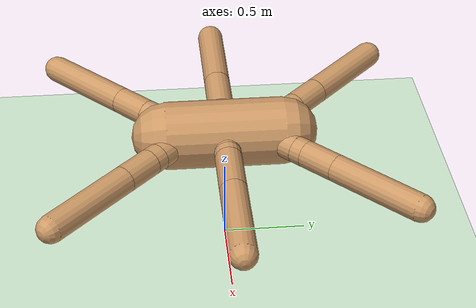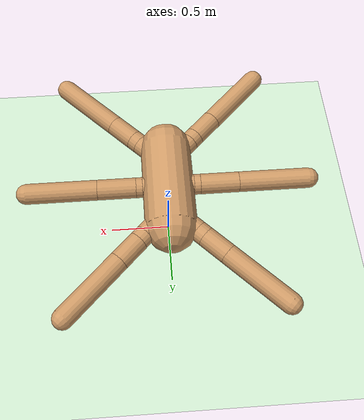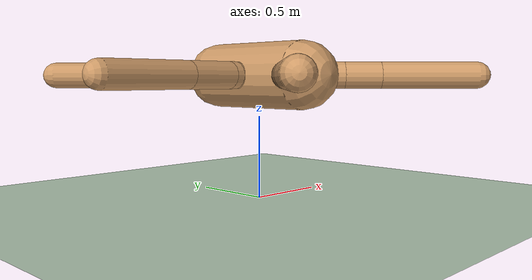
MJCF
<mujoco model="ant">
  <compiler angle="degree" coordinate="local" inertiafromgeom="true"/>
  <option integrator="RK4" timestep="0.01"/>
  <custom>
    <numeric data="0.0 0.0 0.55 1.0 0.0 0.0 0.0 0.0 1.0 0.0 -1.0 0.0 -1.0 0.0 1.0" name="init_qpos"/>
  </custom>
  <default>
    <joint armature="1" damping="1" limited="true"/>
    <geom conaffinity="0" condim="3" density="5.0" friction="1 0.5 0.5" margin="0.01" rgba="0.8 0.6 0.4 1"/>
  </default>
  <asset>
    <texture builtin="gradient" height="100" rgb1="1 1 1" rgb2="0 0 0" type="skybox" width="100"/>
    <texture builtin="flat" height="1278" mark="cross" markrgb="1 1 1" name="texgeom" random="0.01" rgb1="0.8 0.6 0.4" rgb2="0.8 0.6 0.4" type="cube" width="127"/>
    <texture builtin="checker" height="100" name="texplane" rgb1="0 0 0" rgb2="0.8 0.8 0.8" type="2d" width="100"/>
    <material name="MatPlane" reflectance="0.5" shininess="1" specular="1" texrepeat="60 60" texture="texplane"/>
    <material name="geom" texture="texgeom" texuniform="true"/>
  </asset>
  <worldbody>
    <light cutoff="100" diffuse="1 1 1" dir="-0 0 -1.3" directional="true" exponent="1" pos="0 0 1.3" specular=".1 .1 .1"/>
    <geom conaffinity="1" condim="3" material="MatPlane" name="floor" pos="0 0 0" rgba="0.8 0.9 0.8 1" size="40 40 40" type="plane"/>
    <body name="torso" pos="0 0 0.75">
      <camera name="track" mode="trackcom" pos="0 -3 0.3" xyaxes="1 0 0 0 0 1"/>
      <geom name="torso_geom" pos="0 0 0" fromto="0 -0.35 0 0 0.35 0" size="0.2" type="capsule"/>
      <joint armature="0" damping="0" limited="false" margin="0.01" name="root" pos="0 0 0" type="free"/>

      <body name="front_left_leg" pos="0 0.2 0">
        <geom fromto="0.0 0.0 0.0 0.2 0.2 0.0" name="aux_1_geom" size="0.08" type="capsule"/>
        <body name="aux_1" pos="0.2 0.2 0">
          <joint axis="0 0 1" name="hip_1" pos="0.0 0.0 0.0" range="-30 30" type="hinge"/>
          <geom fromto="0.0 0.0 0.0 0.05 0.05 0.0" name="front_left_hip_geom" size="0.08" type="capsule"/>
          <body pos="0.05 0.05 0">
            <joint axis="-1 1 0" name="thigh_1" pos="0.0 0.0 0.0" range="-60 60" type="hinge"/>
            <geom fromto="0.0 0.0 0.0 0.15 0.15 0.0" name="front_left_thigh_geom" size="0.08" type="capsule"/>
            <body pos="0.15 0.15 0.0">
              <joint axis="-1 1 0" name="tibia_1" pos="0.0 0.0 0.0" range="30 70" type="hinge"/>
              <geom fromto="0.0 0.0 0.0 0.4 0.4 0.0" name="front_left_tibia_geom" size="0.08" type="capsule"/>
            </body>
          </body>
        </body>
      </body>

      <body name="front_right_leg" pos="0 0.2 0">
        <geom fromto="0.0 0.0 0.0 -0.2 0.2 0.0" name="aux_2_geom" size="0.08" type="capsule"/>
        <body name="aux_2" pos="-0.2 0.2 0">
          <joint axis="0 0 1" name="hip_2" pos="0.0 0.0 0.0" range="-30 30" type="hinge"/>
          <geom fromto="0.0 0.0 0.0 -0.05 0.05 0.0" name="front_right_hip_geom" size="0.08" type="capsule"/>
          <body pos="-0.05 0.05 0">
            <joint axis="1 1 0" name="thigh_2" pos="0.0 0.0 0.0" range="-60 60" type="hinge"/>
            <geom fromto="0.0 0.0 0.0 -0.15 0.15 0.0" name="front_right_thigh_geom" size="0.08" type="capsule"/>
            <body pos="-0.15 0.15 0.0">
              <joint axis="1 1 0" name="tibia_2" pos="0.0 0.0 0.0" range="-70 -30" type="hinge"/>
              <geom fromto="0.0 0.0 0.0 -0.4 0.4 0.0" name="front_right_tibia_geom" size="0.08" type="capsule"/>
            </body>
          </body>
        </body>
      </body>

      <body name="middle_left_leg" pos="0 0 0">
        <geom fromto="0.0 0.0 0.0 0.2 0.0 0.0" name="aux_3_geom" size="0.08" type="capsule"/>
        <body name="aux_3" pos="0.2 0.0 0">
          <joint axis="0 0 1" name="hip_3" pos="0.0 0.0 0.0" range="-30 30" type="hinge"/>
          <geom fromto="0.0 0.0 0.0 0.05 0.0 0.0" name="middle_left_hip_geom" size="0.08" type="capsule"/>
          <body pos="0.05 0.0 0">
            <joint axis="0 1 0" name="thigh_3" pos="0.0 0.0 0.0" range="-60 60" type="hinge"/>
            <geom fromto="0.0 0.0 0.0 0.3 0.0 0.0" name="middle_left_thigh_geom" size="0.08" type="capsule"/>
            <body pos="0.3 0.0 0.0">
              <joint axis="0 1 0" name="tibia_3" pos="0.0 0.0 0.0" range="30 70" type="hinge"/>
              <geom fromto="0.0 0.0 0.0 0.55 0.0 0.0" name="middle_left_tibia_geom" size="0.08" type="capsule"/>
            </body>
          </body>
        </body>
      </body>

      <body name="middle_right_leg" pos="0 0 0">
        <geom fromto="0.0 0.0 0.0 -0.2 0.0 0.0" name="aux_4_geom" size="0.08" type="capsule"/>
        <body name="aux_4" pos="-0.2 0.0 0">
          <joint axis="0 0 1" name="hip_4" pos="0.0 0.0 0.0" range="-30 30" type="hinge"/>
          <geom fromto="0.0 0.0 0.0 -0.05 0.0 0.0" name="middle_right_hip_geom" size="0.08" type="capsule"/>
          <body pos="-0.05 0.0 0">
            <joint axis="0 1 0" name="thigh_4" pos="0.0 0.0 0.0" range="-60 60" type="hinge"/>
            <geom fromto="0.0 0.0 0.0 -0.3 0.0 0.0" name="middle_right_thigh_geom" size="0.08" type="capsule"/>
            <body pos="-0.3 0.0 0.0">
              <joint axis="0 1 0" name="tibia_4" pos="0.0 0.0 0.0" range="-70 -30" type="hinge"/>
              <geom fromto="0.0 0.0 0.0 -0.55 0.0 0.0" name="middle_right_tibia_geom" size="0.08" type="capsule"/>
            </body>
          </body>
        </body>
      </body>

      <body name="back_left_leg" pos="0 -0.2 0">
        <geom fromto="0.0 0.0 0.0 0.2 -0.2 0.0" name="aux_5_geom" size="0.08" type="capsule"/>
        <body name="aux_5" pos="0.2 -0.2 0">
          <joint axis="0 0 1" name="hip_5" pos="0.0 0.0 0.0" range="-30 30" type="hinge"/>
          <geom fromto="0.0 0.0 0.0 0.05 -0.05 0.0" name="back_left_hip_geom" size="0.08" type="capsule"/>
          <body pos="0.05 -0.05 0">
            <joint axis="1 1 0" name="thigh_5" pos="0.0 0.0 0.0" range="-60 60" type="hinge"/>
            <geom fromto="0.0 0.0 0.0 0.15 -0.15 0.0" name="back_left_thigh_geom" size="0.08" type="capsule"/>
            <body pos="0.15 -0.15 0.0">
              <joint axis="1 1 0" name="tibia_5" pos="0.0 0.0 0.0" range="30 70" type="hinge"/>
              <geom fromto="0.0 0.0 0.0 0.4 -0.4 0.0" name="back_left_tibia_geom" size="0.08" type="capsule"/>
            </body>
          </body>
        </body>
      </body>

      <body name="back_right_leg" pos="0 -0.2 0">
        <geom fromto="0.0 0.0 0.0 -0.2 -0.2 0.0" name="aux_6_geom" size="0.08" type="capsule"/>
        <body name="aux_6" pos="-0.2 -0.2 0">
          <joint axis="0 0 1" name="hip_6" pos="0.0 0.0 0.0" range="-30 30" type="hinge"/>
          <geom fromto="0.0 0.0 0.0 -0.05 -0.05 0.0" name="back_right_hip_geom" size="0.08" type="capsule"/>
          <body pos="-0.05 -0.05 0">
            <joint axis="-1 1 0" name="thigh_6" pos="0.0 0.0 0.0" range="-60 60" type="hinge"/>
            <geom fromto="0.0 0.0 0.0 -0.15 -0.15 0.0" name="back_right_thigh_geom" size="0.08" type="capsule"/>
            <body pos="-0.15 -0.15 0.0">
              <joint axis="-1 1 0" name="tibia_6" pos="0.0 0.0 0.0" range="-70 -30" type="hinge"/>
              <geom fromto="0.0 0.0 0.0 -0.4 -0.4 0.0" name="back_right_tibia_geom" size="0.08" type="capsule"/>
            </body>
          </body>
        </body>
      </body>

    </body>
  </worldbody>
  <actuator>
    <motor ctrllimited="true" ctrlrange="-1.0 1.0" joint="hip_1" gear="150"/>
    <motor ctrllimited="true" ctrlrange="-1.0 1.0" joint="thigh_1" gear="150"/>
    <motor ctrllimited="true" ctrlrange="-1.0 1.0" joint="tibia_1" gear="150"/>

    <motor ctrllimited="true" ctrlrange="-1.0 1.0" joint="hip_2" gear="150"/>
    <motor ctrllimited="true" ctrlrange="-1.0 1.0" joint="thigh_2" gear="150"/>
    <motor ctrllimited="true" ctrlrange="-1.0 1.0" joint="tibia_2" gear="150"/>

    <motor ctrllimited="true" ctrlrange="-1.0 1.0" joint="hip_3" gear="150"/>
    <motor ctrllimited="true" ctrlrange="-1.0 1.0" joint="thigh_3" gear="150"/>
    <motor ctrllimited="true" ctrlrange="-1.0 1.0" joint="tibia_3" gear="150"/>

    <motor ctrllimited="true" ctrlrange="-1.0 1.0" joint="hip_4" gear="150"/>
    <motor ctrllimited="true" ctrlrange="-1.0 1.0" joint="thigh_4" gear="150"/>
    <motor ctrllimited="true" ctrlrange="-1.0 1.0" joint="tibia_4" gear="150"/>

    <motor ctrllimited="true" ctrlrange="-1.0 1.0" joint="hip_5" gear="150"/>
    <motor ctrllimited="true" ctrlrange="-1.0 1.0" joint="thigh_5" gear="150"/>
    <motor ctrllimited="true" ctrlrange="-1.0 1.0" joint="tibia_5" gear="150"/>

    <motor ctrllimited="true" ctrlrange="-1.0 1.0" joint="hip_6" gear="150"/>
    <motor ctrllimited="true" ctrlrange="-1.0 1.0" joint="thigh_6" gear="150"/>
    <motor ctrllimited="true" ctrlrange="-1.0 1.0" joint="tibia_6" gear="150"/>
  </actuator>
</mujoco>
